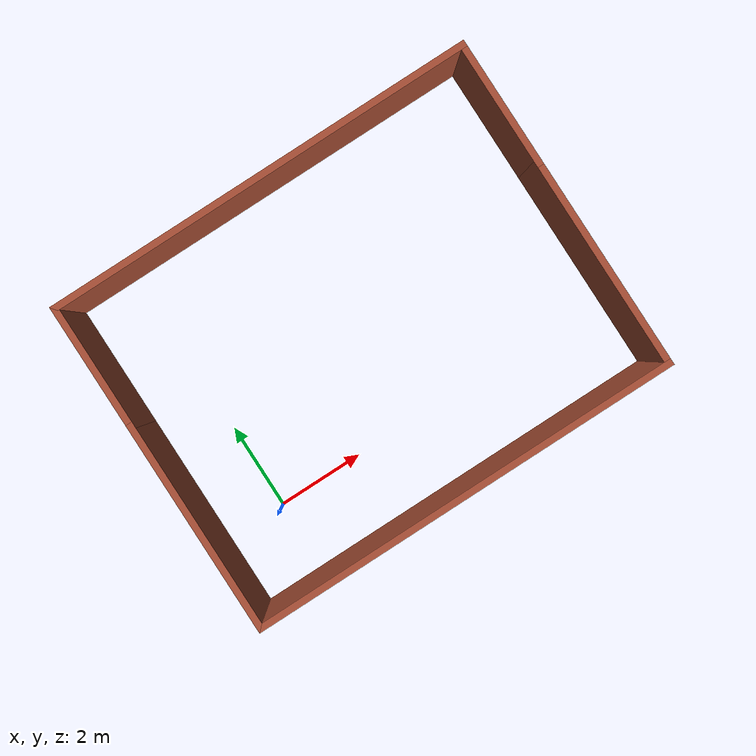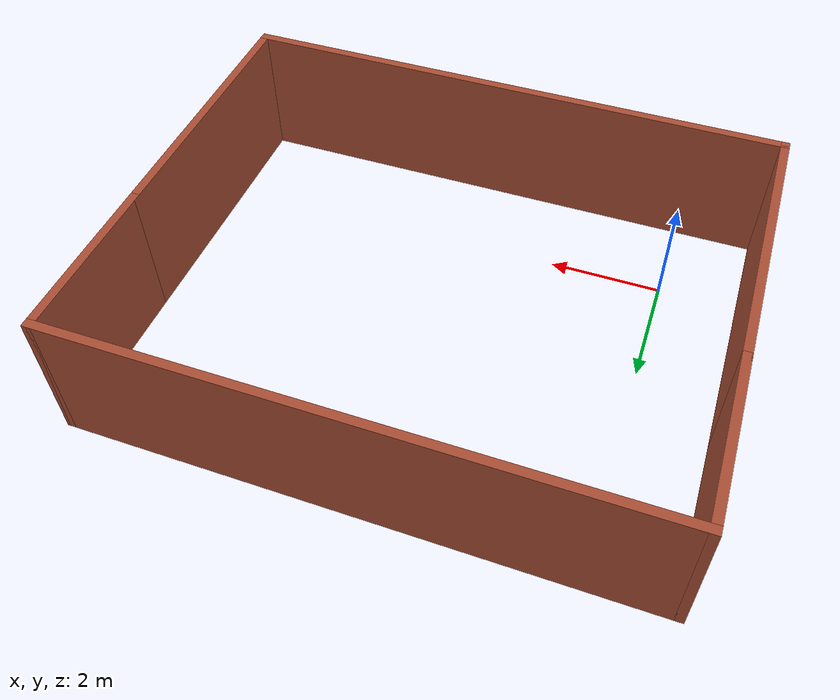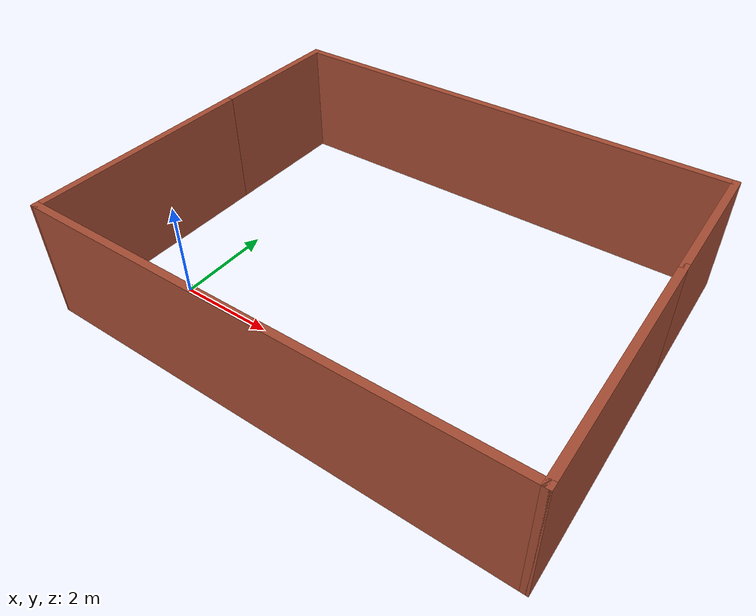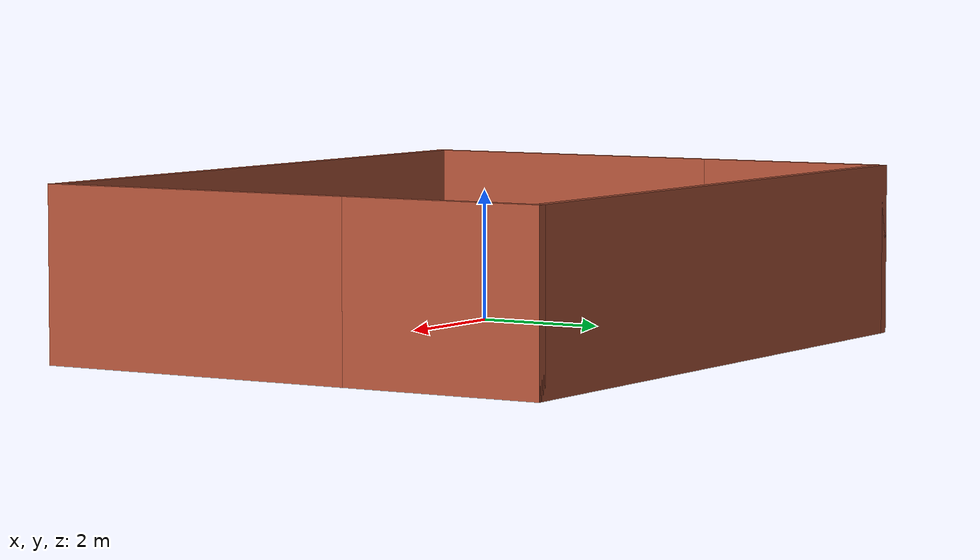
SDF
<?xml version='1.0'?>
<sdf version='1.7'>
  <model name='Puzzlebot_sennaria1'>
    <pose>3.46875 2.16157 0 0 -0 0</pose>
    <link name='Wall_10'>
      <collision name='Wall_10_Collision'>
        <geometry>
          <box>
            <size>3 0.15 2.5</size>
          </box>
        </geometry>
        <pose>0 0 1.25 0 -0 0</pose>
      </collision>
      <visual name='Wall_10_Visual'>
        <pose>0 0 1.25 0 -0 0</pose>
        <geometry>
          <box>
            <size>3 0.15 2.5</size>
          </box>
        </geometry>
        <material>
          <script>
            <uri>file://media/materials/scripts/gazebo.material</uri>
            <name>Gazebo/Bricks</name>
          </script>
          <ambient>1 1 1 1</ambient>
        </material>
        <meta>
          <layer>0</layer>
        </meta>
      </visual>
      <pose>-4.925 2.425 0 0 -0 1.5708</pose>
    </link>
    <link name='Wall_11'>
      <collision name='Wall_11_Collision'>
        <geometry>
          <box>
            <size>10 0.15 2.5</size>
          </box>
        </geometry>
        <pose>0 0 1.25 0 -0 0</pose>
      </collision>
      <visual name='Wall_11_Visual'>
        <pose>0 0 1.25 0 -0 0</pose>
        <geometry>
          <box>
            <size>10 0.15 2.5</size>
          </box>
        </geometry>
        <material>
          <script>
            <uri>file://media/materials/scripts/gazebo.material</uri>
            <name>Gazebo/Bricks</name>
          </script>
          <ambient>1 1 1 1</ambient>
        </material>
        <meta>
          <layer>0</layer>
        </meta>
      </visual>
      <pose>-0 3.85 0 0 -0 0</pose>
    </link>
    <link name='Wall_12'>
      <collision name='Wall_12_Collision'>
        <geometry>
          <box>
            <size>3 0.15 2.5</size>
          </box>
        </geometry>
        <pose>0 0 1.25 0 -0 0</pose>
      </collision>
      <visual name='Wall_12_Visual'>
        <pose>0 0 1.25 0 -0 0</pose>
        <geometry>
          <box>
            <size>3 0.15 2.5</size>
          </box>
        </geometry>
        <material>
          <script>
            <uri>file://media/materials/scripts/gazebo.material</uri>
            <name>Gazebo/Bricks</name>
          </script>
          <ambient>1 1 1 1</ambient>
        </material>
        <meta>
          <layer>0</layer>
        </meta>
      </visual>
      <pose>4.925 2.425 0 0 -0 -1.5708</pose>
    </link>
    <link name='Wall_14'>
      <collision name='Wall_14_Collision'>
        <geometry>
          <box>
            <size>10 0.15 2.5</size>
          </box>
        </geometry>
        <pose>0 0 1.25 0 -0 0</pose>
      </collision>
      <visual name='Wall_14_Visual'>
        <pose>0 0 1.25 0 -0 0</pose>
        <geometry>
          <box>
            <size>10 0.15 2.5</size>
          </box>
        </geometry>
        <material>
          <script>
            <uri>file://media/materials/scripts/gazebo.material</uri>
            <name>Gazebo/Bricks</name>
          </script>
          <ambient>1 1 1 1</ambient>
        </material>
        <meta>
          <layer>0</layer>
        </meta>
      </visual>
      <pose>-0 -3.85 0 0 -0 0</pose>
    </link>
    <link name='Wall_15'>
      <collision name='Wall_15_Collision'>
        <geometry>
          <box>
            <size>5 0.15 2.5</size>
          </box>
        </geometry>
        <pose>0 0 1.25 0 -0 0</pose>
      </collision>
      <visual name='Wall_15_Visual'>
        <pose>0 0 1.25 0 -0 0</pose>
        <geometry>
          <box>
            <size>5 0.15 2.5</size>
          </box>
        </geometry>
        <material>
          <script>
            <uri>file://media/materials/scripts/gazebo.material</uri>
            <name>Gazebo/Bricks</name>
          </script>
          <ambient>1 1 1 1</ambient>
        </material>
        <meta>
          <layer>0</layer>
        </meta>
      </visual>
      <pose>4.925 -1.425 0 0 -0 1.5708</pose>
    </link>
    <link name='Wall_3'>
      <collision name='Wall_3_Collision'>
        <geometry>
          <box>
            <size>5 0.15 2.5</size>
          </box>
        </geometry>
        <pose>0 0 1.25 0 -0 0</pose>
      </collision>
      <visual name='Wall_3_Visual'>
        <pose>0 0 1.25 0 -0 0</pose>
        <geometry>
          <box>
            <size>5 0.15 2.5</size>
          </box>
        </geometry>
        <material>
          <script>
            <uri>file://media/materials/scripts/gazebo.material</uri>
            <name>Gazebo/Bricks</name>
          </script>
          <ambient>1 1 1 1</ambient>
        </material>
        <meta>
          <layer>0</layer>
        </meta>
      </visual>
      <pose>-4.925 -1.425 0 0 -0 1.5708</pose>
    </link>
    <static>1</static>
  </model>
</sdf>
